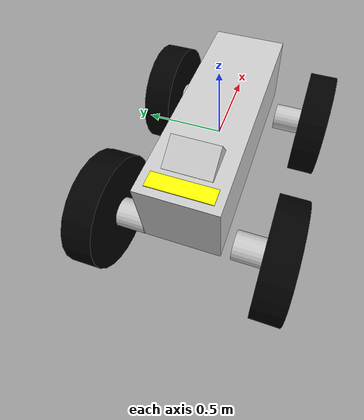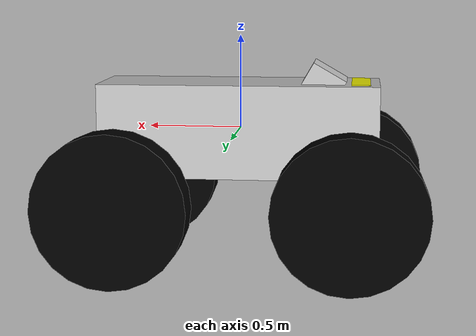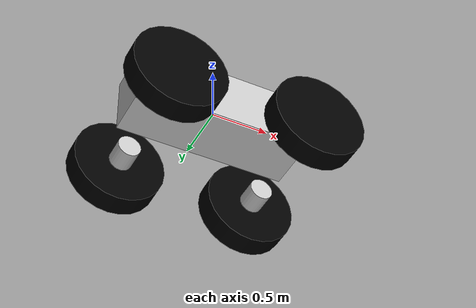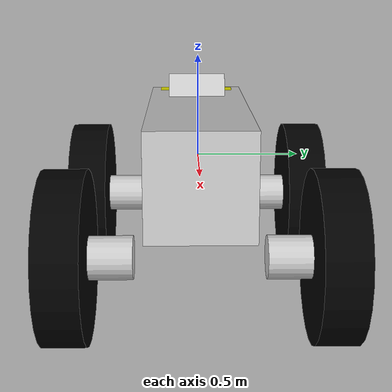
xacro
<?xml version="1.0"?>
<robot
  xmlns:xacro="http://www.ros.org/wiki/xacro"
  name="van_loading">

  <xacro:property name="chassis_length" value="1.5" />
  <xacro:property name="chassis_width" value="0.5" />
  <xacro:property name="chassis_height" value="0.5" />
  <xacro:property name="wheel_width" value="0.2" />
  <xacro:property name="wheel_radius" value="0.4" />
  <xacro:property name="ground_clearance" value="0.25" />
  <xacro:property name="chassis_to_wheel" value="0.35" />
  <xacro:property name="axle_separation" value="1.21" />
  <xacro:property name="axle_width" value="1.2" />

  <xacro:property name="PI" value="3.14159265359" />

  <material name="Grey">
    <color rgba="0.8 0.8 0.8 1.0"/>
  </material>
  <material name="Black">
    <color rgba="0 0 0 1.0"/>
  </material>
  <material name="Yellow">
    <color rgba="1.0 1.0 0 1.0"/>
  </material>

  <xacro:macro name="wheel" params="prefix front side">
    <!-- Wheel -->
    <link name="${prefix}_wheel">
     <collision>
       <origin rpy="${pi/2} 0 0" />
       <geometry>
         <cylinder length="${wheel_width}" radius="${wheel_radius}" />
       </geometry>
     </collision>
     <visual>
        <origin rpy="${pi/2} 0 0" />
        <geometry>
          <cylinder length="${wheel_width}" radius="${wheel_radius}" />
        </geometry>
        <material name="Black"/>
      </visual>
      <inertial>
        <origin xyz="0 0 0" rpy="0 0 0"/>
        <mass value="20"/>
        <inertia
          ixx="20.0" ixy="0.0" ixz="0.0"
                    iyy="20.0" iyz="0.0"
                              izz="20.0"/>
      </inertial>
    </link>
    <gazebo reference="${prefix}_wheel">
      <kp>1000000.0</kp>
      <kd>100.0</kd>
      <mu1>1.0</mu1>
      <mu2>1.0</mu2>
      <material>Gazebo/Black</material>
    </gazebo>

    <!-- Axle -->
    <link name="${prefix}_axle">
      <visual>
        <origin rpy="${pi/2} 0 0" xyz="0 ${side * wheel_width} 0"/>
        <geometry>
          <cylinder length="${wheel_width}" radius="0.1" />
        </geometry>
        <material name="Grey"/>
      </visual>
      <inertial>
        <origin xyz="0 0 0" rpy="0 0 0"/>
        <mass value="1"/>
        <inertia
          ixx="1.0" ixy="0.0"  ixz="0.0"
                     iyy="1.0" iyz="0.0"
                                izz="1.0"/>
      </inertial>
    </link>
    <gazebo reference="${prefix}_axle">
      <selfCollide>false</selfCollide>
      <material>Gazebo/Grey</material>
    </gazebo>
    <joint name="chassis_to_${prefix}_axle_joint" type="revolute">
      <parent link="chassis" />
      <child link="${prefix}_axle" />
      <limit lower="${-20*pi/180}" upper="${20*pi/180}"
             effort="1000" velocity="0.5" />
      <origin
        xyz="${front * axle_separation / 2.0}
             ${-side * axle_width / 2.0}
             ${-(chassis_height / 2.0 + 0.1)}"
      />
      <axis xyz="0 0 -1"/>
    </joint>

    <joint name="${prefix}_axle_to_wheel_joint" type="continuous">
      <parent link="${prefix}_axle"/>
      <child link="${prefix}_wheel"/>
      <origin xyz="0 0 0" />
      <axis xyz="0 1 0"/>
    </joint>

    <transmission name="trans_${prefix}_steering">
      <type>transmission_interface/SimpleTransmission</type>
      <joint name="chassis_to_${prefix}_axle_joint">

        <hardwareInterface>hardware_interface/PositionJointInterface</hardwareInterface>
      </joint>
      <actuator name="${prefix}_steering_motor">
        <mechanicalReduction>1</mechanicalReduction>
      </actuator>
    </transmission>

    <transmission name="trans_${prefix}_wheel">
      <type>transmission_interface/SimpleTransmission</type>
      <joint name="${prefix}_axle_to_wheel_joint">
        <hardwareInterface>hardware_interface/VelocityJointInterface</hardwareInterface>
      </joint>
      <actuator name="${prefix}_wheel_motor">
        <mechanicalReduction>1</mechanicalReduction>
      </actuator>
    </transmission>
  </xacro:macro>

  <!--
  This creates the lasers.

  prefix is to give the lasers different names: front, rear
  front is 1 for front and -1 for rear
  -->
  <xacro:macro name="laser" params="prefix front">
    <link name="${prefix}_laser_link">
      <collision>
        <origin xyz="0 0 0" rpy="0 0 0"/>
        <geometry>
          <box size="0.1 0.1 0.1"/>
        </geometry>
      </collision>
      <inertial>
        <mass value="1e-5" />
        <origin xyz="0 0 0" rpy="0 0 0"/>
        <inertia ixx="1e-6" ixy="0" ixz="0" iyy="1e-6" iyz="0" izz="1e-6" />
      </inertial>
    </link>
    <gazebo reference="${prefix}_laser_link">
      <sensor type="ray" name="${prefix}_laser_sensor">
        <pose>0 0 0 0 0 0</pose>
        <visualize>true</visualize>
        <update_rate>40</update_rate>
        <ray>
          <scan>
            <horizontal>
              <samples>180</samples>
              <resolution>1</resolution>
              <min_angle>${-PI / 2}</min_angle>
              <max_angle>${PI / 2}</max_angle>
            </horizontal>
          </scan>
          <range>
            <min>0.10</min>
            <max>30.0</max>
            <resolution>0.01</resolution>
          </range>
          <noise>
            <type>gaussian</type>
            <mean>0.0</mean>
            <stddev>0.01</stddev>
          </noise>
        </ray>
        <plugin name="gazebo_ros_laser_controller"
                filename="libgazebo_ros_laser.so">
          <topicName>/van_loading/${prefix}_laser/scan</topicName>
          <frameName>${prefix}_laser_link</frameName>
        </plugin>
      </sensor>
    </gazebo>

    <joint name="${prefix}_laser_joint" type="fixed">
      <axis xyz="0 1 0" />
      <xacro:if value="${front == 1}">
        <origin xyz="${front * (chassis_length*0.5+0.45)} 0 ${-chassis_height*0.5}"
                rpy="0 0 0"/>
      </xacro:if>
      <xacro:if value="${front == -1}">
        <origin xyz="${front * (chassis_length*0.5+0.45)} 0 ${-chassis_height*0.5}"
                rpy="0 0 ${PI}"/>
      </xacro:if>
      <parent link="base_link"/>
      <child link="${prefix}_laser_link"/>
    </joint>
  </xacro:macro>

  <!--
  Base link to act as a reference.
  -->
  <link name="base_link"/>
  <gazebo reference="base_link">
  </gazebo>

  <!--
  Main chassis
  -->
  <link name="chassis">
    <collision>
      <origin xyz="0 0 0"/>
      <geometry>
        <box size="${chassis_length} ${chassis_width} ${chassis_height}"/>
      </geometry>
    </collision>
    <visual>
      <origin xyz="0 0 0"/>
      <geometry>
        <box size="${chassis_length} ${chassis_width} ${chassis_height}"/>
      </geometry>
      <material name="Grey"/>
    </visual>
    <inertial>
      <origin xyz="0 0 0" rpy="0 0 0"/>
      <mass value="300"/>
      <inertia
        ixx="300" ixy="0.0" ixz="0.0"
                  iyy="300" iyz="0.0"
                            izz="300"/>
    </inertial>
  </link>
  <gazebo reference="chassis">
    <material>Gazebo/Grey</material>
  </gazebo>

  <joint name="base_link_to_chassis_joint" type="fixed">
    <parent link="base_link"/>
    <child link="chassis"/>
  </joint>

  <!-- Keyboard -->
  <link name="keyboard">
    <collision>
      <origin xyz="0 0 0" />
      <geometry>
        <box size="0.1 0.4 0.01" />
      </geometry>
    </collision>
    <visual>
      <origin xyz="0 0 0" />
      <geometry>
        <box size="0.1 0.4 0.01" />
      </geometry>
      <material name="Yellow"/>
    </visual>
    <inertial>
      <origin xyz="0 0 0" rpy="0 0 0"/>
      <mass value="0.1"/>
      <inertia
        ixx="1" ixy="0.0" ixz="0.0"
                  iyy="1" iyz="0.0"
                            izz="1"/>
    </inertial>
  </link>
  <gazebo reference="keyboard">
    <material>Gazebo/Yellow</material>
  </gazebo>
  <joint name="base_to_keyboard" type="fixed">
    <origin xyz="${-chassis_length/2+0.1} 0 ${chassis_height/2}" />
    <parent link="base_link" />
    <child link="keyboard" />
  </joint>

  <!-- Monitor -->
  <link name="monitor">
    <collision>
      <origin xyz="0 0 0" />
      <geometry>
        <box size="0.15 0.3 0.2" />
      </geometry>
    </collision>
    <visual>
      <origin xyz="0 0 0" />
      <geometry>
        <box size="0.15 0.3 0.2" />
      </geometry>
      <material name="Grey"/>
    </visual>
    <inertial>
      <origin xyz="0 0 0" rpy="0 0 0"/>
      <mass value="0.1"/>
      <inertia
        ixx="1" ixy="0.0" ixz="0.0"
                  iyy="1" iyz="0.0"
                            izz="1"/>
    </inertial>
  </link>
  <gazebo reference="monitor">
    <material>Gazebo/Grey</material>
  </gazebo>
  <joint name="base_to_monitor" type="fixed">
    <origin xyz="${-chassis_length/2+0.3} 0 ${chassis_height/2}"
            rpy="0 ${PI/3} 0" />
    <parent link="base_link" />
    <child link="monitor" />
  </joint>

  <!-- Wheels -->
  <xacro:wheel prefix="front_right" front="1" side="1" />
  <xacro:wheel prefix="front_left" front="1" side="-1" />
  <xacro:wheel prefix="rear_right" front="-1" side="1" />
  <xacro:wheel prefix="rear_left" front="-1" side="-1" />

  <!-- Lasers -->
  <xacro:laser prefix="front" front="1" />
  <xacro:laser prefix="rear" front="-1" />

  <gazebo>
    <plugin name="odometry" filename="libgazebo_ros_p3d.so">
      <alwaysOn>true</alwaysOn>
      <updateRate>100.0</updateRate>
      <robotNamespace>/van_loading</robotNamespace>
      <topicName>odom</topicName>
      <bodyName>base_link</bodyName>
      <frameName>map</frameName>
    </plugin>

    <plugin name="gazebo_ros_control" filename="libgazebo_ros_control.so">
      <robotNamespace>/van_loading</robotNamespace>
      <robotSimType>gazebo_ros_control/DefaultRobotHWSim</robotSimType>
    </plugin>
  </gazebo>

</robot>
